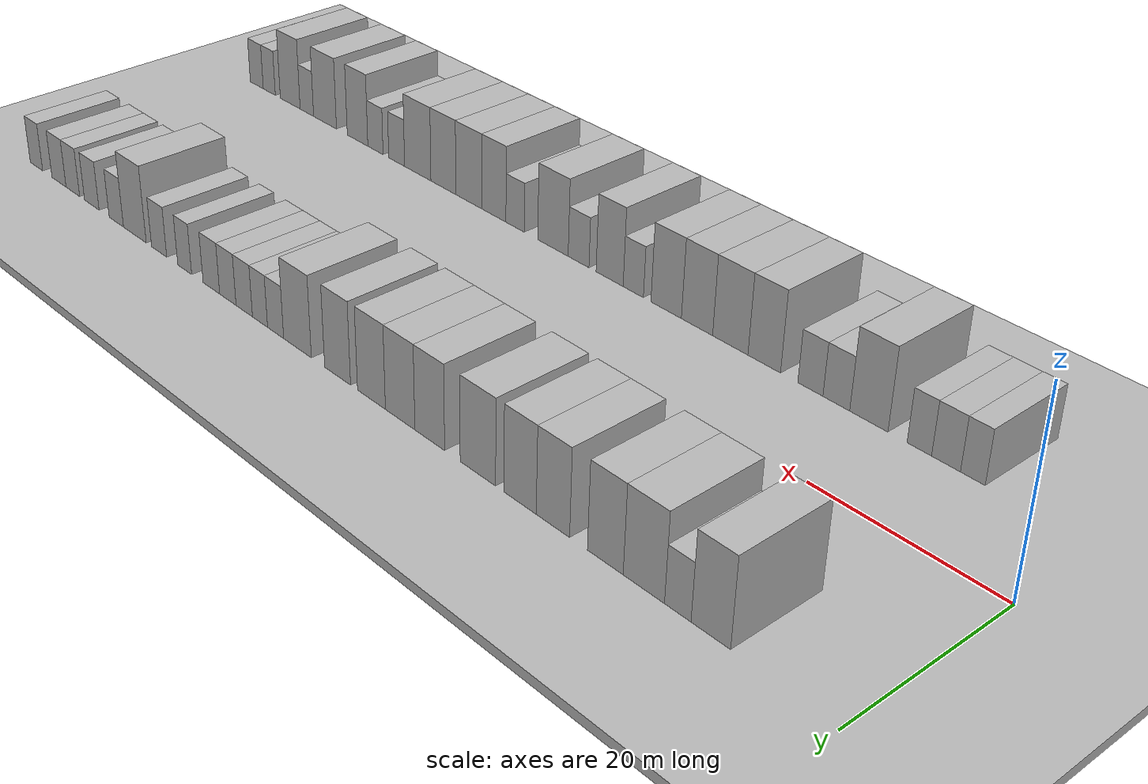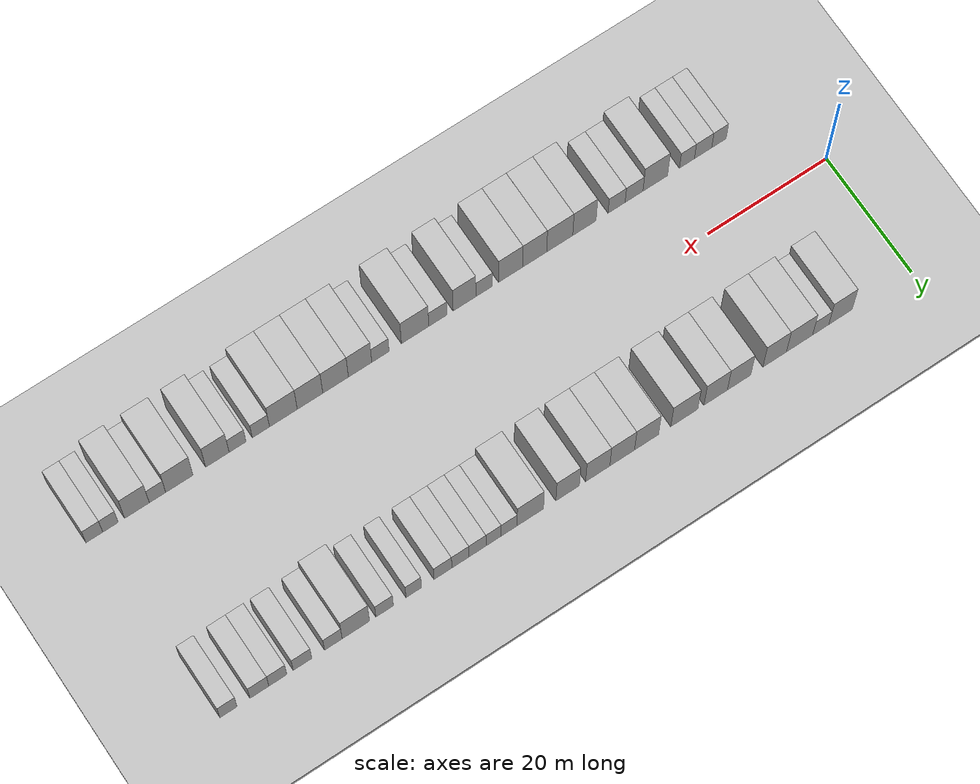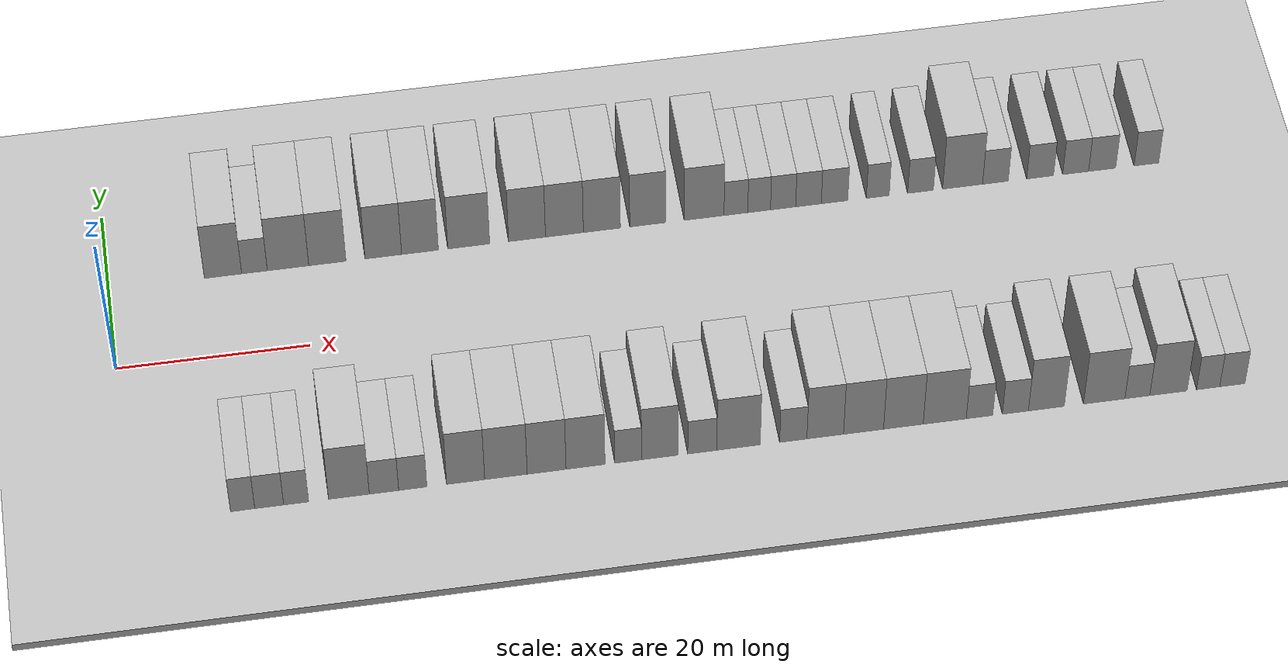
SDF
<sdf version="1.6">
 <world name="default">
  <include><name>ground_plane_1</name><uri>model://HANNAS_ground_plane</uri></include>
  <include>
   <name>ground_plane_2</name>
   <uri>model://HANNAS_ground_plane</uri>
   <pose>100 0 0  0 0 0</pose>
  </include>
  <model name="building_1">
   <static>1</static>
   <pose>11.9510 15.0000 0 0.000000 0.000000 1.570796</pose>
   <link name="link">
    <pose>0 0 4.50 0 0 0</pose>
    <collision name="collision"><geometry><box><size>10.0000 3.9020 9.0000</size></box></geometry></collision>
    <visual name="visual">
     <cast_shadows>0</cast_shadows>
     <geometry><box><size>10.0000 3.9020 9.0000</size></box></geometry>
     <material>
      <script>
       <uri>model://HANNAS_wall/materials/scripts</uri>
       <uri>model://HANNAS_wall/materials/textures</uri>
       <name>vrc/HANNAS_wall</name>
      </script>
     </material>
    </visual>
   </link>
  </model>
  <model name="building_2">
   <static>1</static>
   <pose>15.2485 15.0000 0 0.000000 0.000000 1.570796</pose>
   <link name="link">
    <pose>0 0 3.00 0 0 0</pose>
    <collision name="collision"><geometry><box><size>10.0000 2.6931 6.0000</size></box></geometry></collision>
    <visual name="visual">
     <cast_shadows>0</cast_shadows>
     <geometry><box><size>10.0000 2.6931 6.0000</size></box></geometry>
     <material>
      <script>
       <uri>model://HANNAS_wall/materials/scripts</uri>
       <uri>model://HANNAS_wall/materials/textures</uri>
       <name>vrc/HANNAS_wall</name>
      </script>
     </material>
    </visual>
   </link>
  </model>
  <model name="building_3">
   <static>1</static>
   <pose>18.7668 15.0000 0 0.000000 0.000000 1.570796</pose>
   <link name="link">
    <pose>0 0 4.50 0 0 0</pose>
    <collision name="collision"><geometry><box><size>10.0000 4.3433 9.0000</size></box></geometry></collision>
    <visual name="visual">
     <cast_shadows>0</cast_shadows>
     <geometry><box><size>10.0000 4.3433 9.0000</size></box></geometry>
     <material>
      <script>
       <uri>model://HANNAS_wall/materials/scripts</uri>
       <uri>model://HANNAS_wall/materials/textures</uri>
       <name>vrc/HANNAS_wall</name>
      </script>
     </material>
    </visual>
   </link>
  </model>
  <model name="building_4">
   <static>1</static>
   <pose>22.8934 15.0000 0 0.000000 0.000000 1.570796</pose>
   <link name="link">
    <pose>0 0 4.50 0 0 0</pose>
    <collision name="collision"><geometry><box><size>10.0000 3.9101 9.0000</size></box></geometry></collision>
    <visual name="visual">
     <cast_shadows>0</cast_shadows>
     <geometry><box><size>10.0000 3.9101 9.0000</size></box></geometry>
     <material>
      <script>
       <uri>model://HANNAS_wall/materials/scripts</uri>
       <uri>model://HANNAS_wall/materials/textures</uri>
       <name>vrc/HANNAS_wall</name>
      </script>
     </material>
    </visual>
   </link>
  </model>
  <model name="building_5">
   <static>1</static>
   <pose>28.7797 15.0000 0 0.000000 0.000000 1.570796</pose>
   <link name="link">
    <pose>0 0 4.50 0 0 0</pose>
    <collision name="collision"><geometry><box><size>10.0000 3.8624 9.0000</size></box></geometry></collision>
    <visual name="visual">
     <cast_shadows>0</cast_shadows>
     <geometry><box><size>10.0000 3.8624 9.0000</size></box></geometry>
     <material>
      <script>
       <uri>model://HANNAS_wall/materials/scripts</uri>
       <uri>model://HANNAS_wall/materials/textures</uri>
       <name>vrc/HANNAS_wall</name>
      </script>
     </material>
    </visual>
   </link>
  </model>
  <model name="building_6">
   <static>1</static>
   <pose>32.6472 15.0000 0 0.000000 0.000000 1.570796</pose>
   <link name="link">
    <pose>0 0 4.50 0 0 0</pose>
    <collision name="collision"><geometry><box><size>10.0000 3.8726 9.0000</size></box></geometry></collision>
    <visual name="visual">
     <cast_shadows>0</cast_shadows>
     <geometry><box><size>10.0000 3.8726 9.0000</size></box></geometry>
     <material>
      <script>
       <uri>model://HANNAS_wall/materials/scripts</uri>
       <uri>model://HANNAS_wall/materials/textures</uri>
       <name>vrc/HANNAS_wall</name>
      </script>
     </material>
    </visual>
   </link>
  </model>
  <model name="building_7">
   <static>1</static>
   <pose>37.7968 15.0000 0 0.000000 0.000000 1.570796</pose>
   <link name="link">
    <pose>0 0 4.50 0 0 0</pose>
    <collision name="collision"><geometry><box><size>10.0000 4.4267 9.0000</size></box></geometry></collision>
    <visual name="visual">
     <cast_shadows>0</cast_shadows>
     <geometry><box><size>10.0000 4.4267 9.0000</size></box></geometry>
     <material>
      <script>
       <uri>model://HANNAS_wall/materials/scripts</uri>
       <uri>model://HANNAS_wall/materials/textures</uri>
       <name>vrc/HANNAS_wall</name>
      </script>
     </material>
    </visual>
   </link>
  </model>
  <model name="building_8">
   <static>1</static>
   <pose>43.9708 15.0000 0 0.000000 0.000000 1.570796</pose>
   <link name="link">
    <pose>0 0 4.50 0 0 0</pose>
    <collision name="collision"><geometry><box><size>10.0000 3.9212 9.0000</size></box></geometry></collision>
    <visual name="visual">
     <cast_shadows>0</cast_shadows>
     <geometry><box><size>10.0000 3.9212 9.0000</size></box></geometry>
     <material>
      <script>
       <uri>model://HANNAS_wall/materials/scripts</uri>
       <uri>model://HANNAS_wall/materials/textures</uri>
       <name>vrc/HANNAS_wall</name>
      </script>
     </material>
    </visual>
   </link>
  </model>
  <model name="building_9">
   <static>1</static>
   <pose>47.9427 15.0000 0 0.000000 0.000000 1.570796</pose>
   <link name="link">
    <pose>0 0 4.50 0 0 0</pose>
    <collision name="collision"><geometry><box><size>10.0000 4.0226 9.0000</size></box></geometry></collision>
    <visual name="visual">
     <cast_shadows>0</cast_shadows>
     <geometry><box><size>10.0000 4.0226 9.0000</size></box></geometry>
     <material>
      <script>
       <uri>model://HANNAS_wall/materials/scripts</uri>
       <uri>model://HANNAS_wall/materials/textures</uri>
       <name>vrc/HANNAS_wall</name>
      </script>
     </material>
    </visual>
   </link>
  </model>
  <model name="building_10">
   <static>1</static>
   <pose>51.9227 15.0000 0 0.000000 0.000000 1.570796</pose>
   <link name="link">
    <pose>0 0 4.50 0 0 0</pose>
    <collision name="collision"><geometry><box><size>10.0000 3.9374 9.0000</size></box></geometry></collision>
    <visual name="visual">
     <cast_shadows>0</cast_shadows>
     <geometry><box><size>10.0000 3.9374 9.0000</size></box></geometry>
     <material>
      <script>
       <uri>model://HANNAS_wall/materials/scripts</uri>
       <uri>model://HANNAS_wall/materials/textures</uri>
       <name>vrc/HANNAS_wall</name>
      </script>
     </material>
    </visual>
   </link>
  </model>
  <model name="building_11">
   <static>1</static>
   <pose>56.7916 15.0000 0 0.000000 0.000000 1.570796</pose>
   <link name="link">
    <pose>0 0 4.50 0 0 0</pose>
    <collision name="collision"><geometry><box><size>10.0000 3.8004 9.0000</size></box></geometry></collision>
    <visual name="visual">
     <cast_shadows>0</cast_shadows>
     <geometry><box><size>10.0000 3.8004 9.0000</size></box></geometry>
     <material>
      <script>
       <uri>model://HANNAS_wall/materials/scripts</uri>
       <uri>model://HANNAS_wall/materials/textures</uri>
       <name>vrc/HANNAS_wall</name>
      </script>
     </material>
    </visual>
   </link>
  </model>
  <model name="building_12">
   <static>1</static>
   <pose>62.8235 15.0000 0 0.000000 0.000000 1.570796</pose>
   <link name="link">
    <pose>0 0 4.50 0 0 0</pose>
    <collision name="collision"><geometry><box><size>10.0000 4.2633 9.0000</size></box></geometry></collision>
    <visual name="visual">
     <cast_shadows>0</cast_shadows>
     <geometry><box><size>10.0000 4.2633 9.0000</size></box></geometry>
     <material>
      <script>
       <uri>model://HANNAS_wall/materials/scripts</uri>
       <uri>model://HANNAS_wall/materials/textures</uri>
       <name>vrc/HANNAS_wall</name>
      </script>
     </material>
    </visual>
   </link>
  </model>
  <model name="building_13">
   <static>1</static>
   <pose>66.2284 15.0000 0 0.000000 0.000000 1.570796</pose>
   <link name="link">
    <pose>0 0 3.00 0 0 0</pose>
    <collision name="collision"><geometry><box><size>10.0000 2.5465 6.0000</size></box></geometry></collision>
    <visual name="visual">
     <cast_shadows>0</cast_shadows>
     <geometry><box><size>10.0000 2.5465 6.0000</size></box></geometry>
     <material>
      <script>
       <uri>model://HANNAS_wall/materials/scripts</uri>
       <uri>model://HANNAS_wall/materials/textures</uri>
       <name>vrc/HANNAS_wall</name>
      </script>
     </material>
    </visual>
   </link>
  </model>
  <model name="building_14">
   <static>1</static>
   <pose>68.7185 15.0000 0 0.000000 0.000000 1.570796</pose>
   <link name="link">
    <pose>0 0 3.00 0 0 0</pose>
    <collision name="collision"><geometry><box><size>10.0000 2.4337 6.0000</size></box></geometry></collision>
    <visual name="visual">
     <cast_shadows>0</cast_shadows>
     <geometry><box><size>10.0000 2.4337 6.0000</size></box></geometry>
     <material>
      <script>
       <uri>model://HANNAS_wall/materials/scripts</uri>
       <uri>model://HANNAS_wall/materials/textures</uri>
       <name>vrc/HANNAS_wall</name>
      </script>
     </material>
    </visual>
   </link>
  </model>
  <model name="building_15">
   <static>1</static>
   <pose>71.2841 15.0000 0 0.000000 0.000000 1.570796</pose>
   <link name="link">
    <pose>0 0 3.00 0 0 0</pose>
    <collision name="collision"><geometry><box><size>10.0000 2.6976 6.0000</size></box></geometry></collision>
    <visual name="visual">
     <cast_shadows>0</cast_shadows>
     <geometry><box><size>10.0000 2.6976 6.0000</size></box></geometry>
     <material>
      <script>
       <uri>model://HANNAS_wall/materials/scripts</uri>
       <uri>model://HANNAS_wall/materials/textures</uri>
       <name>vrc/HANNAS_wall</name>
      </script>
     </material>
    </visual>
   </link>
  </model>
  <model name="building_16">
   <static>1</static>
   <pose>74.0103 15.0000 0 0.000000 0.000000 1.570796</pose>
   <link name="link">
    <pose>0 0 3.00 0 0 0</pose>
    <collision name="collision"><geometry><box><size>10.0000 2.7549 6.0000</size></box></geometry></collision>
    <visual name="visual">
     <cast_shadows>0</cast_shadows>
     <geometry><box><size>10.0000 2.7549 6.0000</size></box></geometry>
     <material>
      <script>
       <uri>model://HANNAS_wall/materials/scripts</uri>
       <uri>model://HANNAS_wall/materials/textures</uri>
       <name>vrc/HANNAS_wall</name>
      </script>
     </material>
    </visual>
   </link>
  </model>
  <model name="building_17">
   <static>1</static>
   <pose>76.8111 15.0000 0 0.000000 0.000000 1.570796</pose>
   <link name="link">
    <pose>0 0 3.00 0 0 0</pose>
    <collision name="collision"><geometry><box><size>10.0000 2.8467 6.0000</size></box></geometry></collision>
    <visual name="visual">
     <cast_shadows>0</cast_shadows>
     <geometry><box><size>10.0000 2.8467 6.0000</size></box></geometry>
     <material>
      <script>
       <uri>model://HANNAS_wall/materials/scripts</uri>
       <uri>model://HANNAS_wall/materials/textures</uri>
       <name>vrc/HANNAS_wall</name>
      </script>
     </material>
    </visual>
   </link>
  </model>
  <model name="building_18">
   <static>1</static>
   <pose>81.4646 15.0000 0 0.000000 0.000000 1.570796</pose>
   <link name="link">
    <pose>0 0 3.00 0 0 0</pose>
    <collision name="collision"><geometry><box><size>10.0000 2.4603 6.0000</size></box></geometry></collision>
    <visual name="visual">
     <cast_shadows>0</cast_shadows>
     <geometry><box><size>10.0000 2.4603 6.0000</size></box></geometry>
     <material>
      <script>
       <uri>model://HANNAS_wall/materials/scripts</uri>
       <uri>model://HANNAS_wall/materials/textures</uri>
       <name>vrc/HANNAS_wall</name>
      </script>
     </material>
    </visual>
   </link>
  </model>
  <model name="building_19">
   <static>1</static>
   <pose>86.0817 15.0000 0 0.000000 0.000000 1.570796</pose>
   <link name="link">
    <pose>0 0 3.00 0 0 0</pose>
    <collision name="collision"><geometry><box><size>10.0000 2.7739 6.0000</size></box></geometry></collision>
    <visual name="visual">
     <cast_shadows>0</cast_shadows>
     <geometry><box><size>10.0000 2.7739 6.0000</size></box></geometry>
     <material>
      <script>
       <uri>model://HANNAS_wall/materials/scripts</uri>
       <uri>model://HANNAS_wall/materials/textures</uri>
       <name>vrc/HANNAS_wall</name>
      </script>
     </material>
    </visual>
   </link>
  </model>
  <model name="building_20">
   <static>1</static>
   <pose>90.6306 15.0000 0 0.000000 0.000000 1.570796</pose>
   <link name="link">
    <pose>0 0 4.50 0 0 0</pose>
    <collision name="collision"><geometry><box><size>10.0000 4.3240 9.0000</size></box></geometry></collision>
    <visual name="visual">
     <cast_shadows>0</cast_shadows>
     <geometry><box><size>10.0000 4.3240 9.0000</size></box></geometry>
     <material>
      <script>
       <uri>model://HANNAS_wall/materials/scripts</uri>
       <uri>model://HANNAS_wall/materials/textures</uri>
       <name>vrc/HANNAS_wall</name>
      </script>
     </material>
    </visual>
   </link>
  </model>
  <model name="building_21">
   <static>1</static>
   <pose>94.1818 15.0000 0 0.000000 0.000000 1.570796</pose>
   <link name="link">
    <pose>0 0 3.00 0 0 0</pose>
    <collision name="collision"><geometry><box><size>10.0000 2.7784 6.0000</size></box></geometry></collision>
    <visual name="visual">
     <cast_shadows>0</cast_shadows>
     <geometry><box><size>10.0000 2.7784 6.0000</size></box></geometry>
     <material>
      <script>
       <uri>model://HANNAS_wall/materials/scripts</uri>
       <uri>model://HANNAS_wall/materials/textures</uri>
       <name>vrc/HANNAS_wall</name>
      </script>
     </material>
    </visual>
   </link>
  </model>
  <model name="building_22">
   <static>1</static>
   <pose>99.0298 15.0000 0 0.000000 0.000000 1.570796</pose>
   <link name="link">
    <pose>0 0 3.00 0 0 0</pose>
    <collision name="collision"><geometry><box><size>10.0000 2.9176 6.0000</size></box></geometry></collision>
    <visual name="visual">
     <cast_shadows>0</cast_shadows>
     <geometry><box><size>10.0000 2.9176 6.0000</size></box></geometry>
     <material>
      <script>
       <uri>model://HANNAS_wall/materials/scripts</uri>
       <uri>model://HANNAS_wall/materials/textures</uri>
       <name>vrc/HANNAS_wall</name>
      </script>
     </material>
    </visual>
   </link>
  </model>
  <model name="building_23">
   <static>1</static>
   <pose>102.8933 15.0000 0 0.000000 0.000000 1.570796</pose>
   <link name="link">
    <pose>0 0 3.00 0 0 0</pose>
    <collision name="collision"><geometry><box><size>10.0000 2.8093 6.0000</size></box></geometry></collision>
    <visual name="visual">
     <cast_shadows>0</cast_shadows>
     <geometry><box><size>10.0000 2.8093 6.0000</size></box></geometry>
     <material>
      <script>
       <uri>model://HANNAS_wall/materials/scripts</uri>
       <uri>model://HANNAS_wall/materials/textures</uri>
       <name>vrc/HANNAS_wall</name>
      </script>
     </material>
    </visual>
   </link>
  </model>
  <model name="building_24">
   <static>1</static>
   <pose>105.7759 15.0000 0 0.000000 0.000000 1.570796</pose>
   <link name="link">
    <pose>0 0 3.00 0 0 0</pose>
    <collision name="collision"><geometry><box><size>10.0000 2.9560 6.0000</size></box></geometry></collision>
    <visual name="visual">
     <cast_shadows>0</cast_shadows>
     <geometry><box><size>10.0000 2.9560 6.0000</size></box></geometry>
     <material>
      <script>
       <uri>model://HANNAS_wall/materials/scripts</uri>
       <uri>model://HANNAS_wall/materials/textures</uri>
       <name>vrc/HANNAS_wall</name>
      </script>
     </material>
    </visual>
   </link>
  </model>
  <model name="building_25">
   <static>1</static>
   <pose>110.5981 15.0000 0 0.000000 0.000000 1.570796</pose>
   <link name="link">
    <pose>0 0 3.00 0 0 0</pose>
    <collision name="collision"><geometry><box><size>10.0000 2.6883 6.0000</size></box></geometry></collision>
    <visual name="visual">
     <cast_shadows>0</cast_shadows>
     <geometry><box><size>10.0000 2.6883 6.0000</size></box></geometry>
     <material>
      <script>
       <uri>model://HANNAS_wall/materials/scripts</uri>
       <uri>model://HANNAS_wall/materials/textures</uri>
       <name>vrc/HANNAS_wall</name>
      </script>
     </material>
    </visual>
   </link>
  </model>
  <model name="building_54">
   <static>1</static>
   <pose>11.2171 -15.0000 0 0.000000 0.000000 1.570796</pose>
   <link name="link">
    <pose>0 0 3.00 0 0 0</pose>
    <collision name="collision"><geometry><box><size>10.0000 2.4342 6.0000</size></box></geometry></collision>
    <visual name="visual">
     <cast_shadows>0</cast_shadows>
     <geometry><box><size>10.0000 2.4342 6.0000</size></box></geometry>
     <material>
      <script>
       <uri>model://HANNAS_wall/materials/scripts</uri>
       <uri>model://HANNAS_wall/materials/textures</uri>
       <name>vrc/HANNAS_wall</name>
      </script>
     </material>
    </visual>
   </link>
  </model>
  <model name="building_55">
   <static>1</static>
   <pose>13.8826 -15.0000 0 0.000000 0.000000 1.570796</pose>
   <link name="link">
    <pose>0 0 3.00 0 0 0</pose>
    <collision name="collision"><geometry><box><size>10.0000 2.8969 6.0000</size></box></geometry></collision>
    <visual name="visual">
     <cast_shadows>0</cast_shadows>
     <geometry><box><size>10.0000 2.8969 6.0000</size></box></geometry>
     <material>
      <script>
       <uri>model://HANNAS_wall/materials/scripts</uri>
       <uri>model://HANNAS_wall/materials/textures</uri>
       <name>vrc/HANNAS_wall</name>
      </script>
     </material>
    </visual>
   </link>
  </model>
  <model name="building_56">
   <static>1</static>
   <pose>16.5893 -15.0000 0 0.000000 0.000000 1.570796</pose>
   <link name="link">
    <pose>0 0 3.00 0 0 0</pose>
    <collision name="collision"><geometry><box><size>10.0000 2.5164 6.0000</size></box></geometry></collision>
    <visual name="visual">
     <cast_shadows>0</cast_shadows>
     <geometry><box><size>10.0000 2.5164 6.0000</size></box></geometry>
     <material>
      <script>
       <uri>model://HANNAS_wall/materials/scripts</uri>
       <uri>model://HANNAS_wall/materials/textures</uri>
       <name>vrc/HANNAS_wall</name>
      </script>
     </material>
    </visual>
   </link>
  </model>
  <model name="building_57">
   <static>1</static>
   <pose>21.9039 -15.0000 0 0.000000 0.000000 1.570796</pose>
   <link name="link">
    <pose>0 0 4.50 0 0 0</pose>
    <collision name="collision"><geometry><box><size>10.0000 4.1128 9.0000</size></box></geometry></collision>
    <visual name="visual">
     <cast_shadows>0</cast_shadows>
     <geometry><box><size>10.0000 4.1128 9.0000</size></box></geometry>
     <material>
      <script>
       <uri>model://HANNAS_wall/materials/scripts</uri>
       <uri>model://HANNAS_wall/materials/textures</uri>
       <name>vrc/HANNAS_wall</name>
      </script>
     </material>
    </visual>
   </link>
  </model>
  <model name="building_58">
   <static>1</static>
   <pose>25.4424 -15.0000 0 0.000000 0.000000 1.570796</pose>
   <link name="link">
    <pose>0 0 3.00 0 0 0</pose>
    <collision name="collision"><geometry><box><size>10.0000 2.9643 6.0000</size></box></geometry></collision>
    <visual name="visual">
     <cast_shadows>0</cast_shadows>
     <geometry><box><size>10.0000 2.9643 6.0000</size></box></geometry>
     <material>
      <script>
       <uri>model://HANNAS_wall/materials/scripts</uri>
       <uri>model://HANNAS_wall/materials/textures</uri>
       <name>vrc/HANNAS_wall</name>
      </script>
     </material>
    </visual>
   </link>
  </model>
  <model name="building_59">
   <static>1</static>
   <pose>28.3462 -15.0000 0 0.000000 0.000000 1.570796</pose>
   <link name="link">
    <pose>0 0 3.00 0 0 0</pose>
    <collision name="collision"><geometry><box><size>10.0000 2.8432 6.0000</size></box></geometry></collision>
    <visual name="visual">
     <cast_shadows>0</cast_shadows>
     <geometry><box><size>10.0000 2.8432 6.0000</size></box></geometry>
     <material>
      <script>
       <uri>model://HANNAS_wall/materials/scripts</uri>
       <uri>model://HANNAS_wall/materials/textures</uri>
       <name>vrc/HANNAS_wall</name>
      </script>
     </material>
    </visual>
   </link>
  </model>
  <model name="building_60">
   <static>1</static>
   <pose>33.6958 -15.0000 0 0.000000 0.000000 1.570796</pose>
   <link name="link">
    <pose>0 0 4.50 0 0 0</pose>
    <collision name="collision"><geometry><box><size>10.0000 3.8559 9.0000</size></box></geometry></collision>
    <visual name="visual">
     <cast_shadows>0</cast_shadows>
     <geometry><box><size>10.0000 3.8559 9.0000</size></box></geometry>
     <material>
      <script>
       <uri>model://HANNAS_wall/materials/scripts</uri>
       <uri>model://HANNAS_wall/materials/textures</uri>
       <name>vrc/HANNAS_wall</name>
      </script>
     </material>
    </visual>
   </link>
  </model>
  <model name="building_61">
   <static>1</static>
   <pose>37.7832 -15.0000 0 0.000000 0.000000 1.570796</pose>
   <link name="link">
    <pose>0 0 4.50 0 0 0</pose>
    <collision name="collision"><geometry><box><size>10.0000 4.3190 9.0000</size></box></geometry></collision>
    <visual name="visual">
     <cast_shadows>0</cast_shadows>
     <geometry><box><size>10.0000 4.3190 9.0000</size></box></geometry>
     <material>
      <script>
       <uri>model://HANNAS_wall/materials/scripts</uri>
       <uri>model://HANNAS_wall/materials/textures</uri>
       <name>vrc/HANNAS_wall</name>
      </script>
     </material>
    </visual>
   </link>
  </model>
  <model name="building_62">
   <static>1</static>
   <pose>41.9156 -15.0000 0 0.000000 0.000000 1.570796</pose>
   <link name="link">
    <pose>0 0 4.50 0 0 0</pose>
    <collision name="collision"><geometry><box><size>10.0000 3.9457 9.0000</size></box></geometry></collision>
    <visual name="visual">
     <cast_shadows>0</cast_shadows>
     <geometry><box><size>10.0000 3.9457 9.0000</size></box></geometry>
     <material>
      <script>
       <uri>model://HANNAS_wall/materials/scripts</uri>
       <uri>model://HANNAS_wall/materials/textures</uri>
       <name>vrc/HANNAS_wall</name>
      </script>
     </material>
    </visual>
   </link>
  </model>
  <model name="building_63">
   <static>1</static>
   <pose>45.8698 -15.0000 0 0.000000 0.000000 1.570796</pose>
   <link name="link">
    <pose>0 0 4.50 0 0 0</pose>
    <collision name="collision"><geometry><box><size>10.0000 3.9627 9.0000</size></box></geometry></collision>
    <visual name="visual">
     <cast_shadows>0</cast_shadows>
     <geometry><box><size>10.0000 3.9627 9.0000</size></box></geometry>
     <material>
      <script>
       <uri>model://HANNAS_wall/materials/scripts</uri>
       <uri>model://HANNAS_wall/materials/textures</uri>
       <name>vrc/HANNAS_wall</name>
      </script>
     </material>
    </visual>
   </link>
  </model>
  <model name="building_64">
   <static>1</static>
   <pose>50.2139 -15.0000 0 0.000000 0.000000 1.570796</pose>
   <link name="link">
    <pose>0 0 3.00 0 0 0</pose>
    <collision name="collision"><geometry><box><size>10.0000 2.7255 6.0000</size></box></geometry></collision>
    <visual name="visual">
     <cast_shadows>0</cast_shadows>
     <geometry><box><size>10.0000 2.7255 6.0000</size></box></geometry>
     <material>
      <script>
       <uri>model://HANNAS_wall/materials/scripts</uri>
       <uri>model://HANNAS_wall/materials/textures</uri>
       <name>vrc/HANNAS_wall</name>
      </script>
     </material>
    </visual>
   </link>
  </model>
  <model name="building_65">
   <static>1</static>
   <pose>53.4395 -15.0000 0 0.000000 0.000000 1.570796</pose>
   <link name="link">
    <pose>0 0 4.50 0 0 0</pose>
    <collision name="collision"><geometry><box><size>10.0000 3.7256 9.0000</size></box></geometry></collision>
    <visual name="visual">
     <cast_shadows>0</cast_shadows>
     <geometry><box><size>10.0000 3.7256 9.0000</size></box></geometry>
     <material>
      <script>
       <uri>model://HANNAS_wall/materials/scripts</uri>
       <uri>model://HANNAS_wall/materials/textures</uri>
       <name>vrc/HANNAS_wall</name>
      </script>
     </material>
    </visual>
   </link>
  </model>
  <model name="building_66">
   <static>1</static>
   <pose>57.7850 -15.0000 0 0.000000 0.000000 1.570796</pose>
   <link name="link">
    <pose>0 0 3.00 0 0 0</pose>
    <collision name="collision"><geometry><box><size>10.0000 2.9654 6.0000</size></box></geometry></collision>
    <visual name="visual">
     <cast_shadows>0</cast_shadows>
     <geometry><box><size>10.0000 2.9654 6.0000</size></box></geometry>
     <material>
      <script>
       <uri>model://HANNAS_wall/materials/scripts</uri>
       <uri>model://HANNAS_wall/materials/textures</uri>
       <name>vrc/HANNAS_wall</name>
      </script>
     </material>
    </visual>
   </link>
  </model>
  <model name="building_67">
   <static>1</static>
   <pose>61.4964 -15.0000 0 0.000000 0.000000 1.570796</pose>
   <link name="link">
    <pose>0 0 4.50 0 0 0</pose>
    <collision name="collision"><geometry><box><size>10.0000 4.4574 9.0000</size></box></geometry></collision>
    <visual name="visual">
     <cast_shadows>0</cast_shadows>
     <geometry><box><size>10.0000 4.4574 9.0000</size></box></geometry>
     <material>
      <script>
       <uri>model://HANNAS_wall/materials/scripts</uri>
       <uri>model://HANNAS_wall/materials/textures</uri>
       <name>vrc/HANNAS_wall</name>
      </script>
     </material>
    </visual>
   </link>
  </model>
  <model name="building_68">
   <static>1</static>
   <pose>67.1237 -15.0000 0 0.000000 0.000000 1.570796</pose>
   <link name="link">
    <pose>0 0 3.00 0 0 0</pose>
    <collision name="collision"><geometry><box><size>10.0000 2.7972 6.0000</size></box></geometry></collision>
    <visual name="visual">
     <cast_shadows>0</cast_shadows>
     <geometry><box><size>10.0000 2.7972 6.0000</size></box></geometry>
     <material>
      <script>
       <uri>model://HANNAS_wall/materials/scripts</uri>
       <uri>model://HANNAS_wall/materials/textures</uri>
       <name>vrc/HANNAS_wall</name>
      </script>
     </material>
    </visual>
   </link>
  </model>
  <model name="building_69">
   <static>1</static>
   <pose>70.4109 -15.0000 0 0.000000 0.000000 1.570796</pose>
   <link name="link">
    <pose>0 0 4.50 0 0 0</pose>
    <collision name="collision"><geometry><box><size>10.0000 3.7771 9.0000</size></box></geometry></collision>
    <visual name="visual">
     <cast_shadows>0</cast_shadows>
     <geometry><box><size>10.0000 3.7771 9.0000</size></box></geometry>
     <material>
      <script>
       <uri>model://HANNAS_wall/materials/scripts</uri>
       <uri>model://HANNAS_wall/materials/textures</uri>
       <name>vrc/HANNAS_wall</name>
      </script>
     </material>
    </visual>
   </link>
  </model>
  <model name="building_70">
   <static>1</static>
   <pose>74.3618 -15.0000 0 0.000000 0.000000 1.570796</pose>
   <link name="link">
    <pose>0 0 4.50 0 0 0</pose>
    <collision name="collision"><geometry><box><size>10.0000 4.1248 9.0000</size></box></geometry></collision>
    <visual name="visual">
     <cast_shadows>0</cast_shadows>
     <geometry><box><size>10.0000 4.1248 9.0000</size></box></geometry>
     <material>
      <script>
       <uri>model://HANNAS_wall/materials/scripts</uri>
       <uri>model://HANNAS_wall/materials/textures</uri>
       <name>vrc/HANNAS_wall</name>
      </script>
     </material>
    </visual>
   </link>
  </model>
  <model name="building_71">
   <static>1</static>
   <pose>78.4745 -15.0000 0 0.000000 0.000000 1.570796</pose>
   <link name="link">
    <pose>0 0 4.50 0 0 0</pose>
    <collision name="collision"><geometry><box><size>10.0000 4.1004 9.0000</size></box></geometry></collision>
    <visual name="visual">
     <cast_shadows>0</cast_shadows>
     <geometry><box><size>10.0000 4.1004 9.0000</size></box></geometry>
     <material>
      <script>
       <uri>model://HANNAS_wall/materials/scripts</uri>
       <uri>model://HANNAS_wall/materials/textures</uri>
       <name>vrc/HANNAS_wall</name>
      </script>
     </material>
    </visual>
   </link>
  </model>
  <model name="building_72">
   <static>1</static>
   <pose>82.7525 -15.0000 0 0.000000 0.000000 1.570796</pose>
   <link name="link">
    <pose>0 0 4.50 0 0 0</pose>
    <collision name="collision"><geometry><box><size>10.0000 4.4556 9.0000</size></box></geometry></collision>
    <visual name="visual">
     <cast_shadows>0</cast_shadows>
     <geometry><box><size>10.0000 4.4556 9.0000</size></box></geometry>
     <material>
      <script>
       <uri>model://HANNAS_wall/materials/scripts</uri>
       <uri>model://HANNAS_wall/materials/textures</uri>
       <name>vrc/HANNAS_wall</name>
      </script>
     </material>
    </visual>
   </link>
  </model>
  <model name="building_73">
   <static>1</static>
   <pose>86.3545 -15.0000 0 0.000000 0.000000 1.570796</pose>
   <link name="link">
    <pose>0 0 3.00 0 0 0</pose>
    <collision name="collision"><geometry><box><size>10.0000 2.7485 6.0000</size></box></geometry></collision>
    <visual name="visual">
     <cast_shadows>0</cast_shadows>
     <geometry><box><size>10.0000 2.7485 6.0000</size></box></geometry>
     <material>
      <script>
       <uri>model://HANNAS_wall/materials/scripts</uri>
       <uri>model://HANNAS_wall/materials/textures</uri>
       <name>vrc/HANNAS_wall</name>
      </script>
     </material>
    </visual>
   </link>
  </model>
  <model name="building_74">
   <static>1</static>
   <pose>90.0816 -15.0000 0 0.000000 0.000000 1.570796</pose>
   <link name="link">
    <pose>0 0 3.00 0 0 0</pose>
    <collision name="collision"><geometry><box><size>10.0000 2.7057 6.0000</size></box></geometry></collision>
    <visual name="visual">
     <cast_shadows>0</cast_shadows>
     <geometry><box><size>10.0000 2.7057 6.0000</size></box></geometry>
     <material>
      <script>
       <uri>model://HANNAS_wall/materials/scripts</uri>
       <uri>model://HANNAS_wall/materials/textures</uri>
       <name>vrc/HANNAS_wall</name>
      </script>
     </material>
    </visual>
   </link>
  </model>
  <model name="building_75">
   <static>1</static>
   <pose>93.2988 -15.0000 0 0.000000 0.000000 1.570796</pose>
   <link name="link">
    <pose>0 0 4.50 0 0 0</pose>
    <collision name="collision"><geometry><box><size>10.0000 3.7288 9.0000</size></box></geometry></collision>
    <visual name="visual">
     <cast_shadows>0</cast_shadows>
     <geometry><box><size>10.0000 3.7288 9.0000</size></box></geometry>
     <material>
      <script>
       <uri>model://HANNAS_wall/materials/scripts</uri>
       <uri>model://HANNAS_wall/materials/textures</uri>
       <name>vrc/HANNAS_wall</name>
      </script>
     </material>
    </visual>
   </link>
  </model>
  <model name="building_76">
   <static>1</static>
   <pose>99.3253 -15.0000 0 0.000000 0.000000 1.570796</pose>
   <link name="link">
    <pose>0 0 4.50 0 0 0</pose>
    <collision name="collision"><geometry><box><size>10.0000 4.3243 9.0000</size></box></geometry></collision>
    <visual name="visual">
     <cast_shadows>0</cast_shadows>
     <geometry><box><size>10.0000 4.3243 9.0000</size></box></geometry>
     <material>
      <script>
       <uri>model://HANNAS_wall/materials/scripts</uri>
       <uri>model://HANNAS_wall/materials/textures</uri>
       <name>vrc/HANNAS_wall</name>
      </script>
     </material>
    </visual>
   </link>
  </model>
  <model name="building_77">
   <static>1</static>
   <pose>102.7853 -15.0000 0 0.000000 0.000000 1.570796</pose>
   <link name="link">
    <pose>0 0 3.00 0 0 0</pose>
    <collision name="collision"><geometry><box><size>10.0000 2.5957 6.0000</size></box></geometry></collision>
    <visual name="visual">
     <cast_shadows>0</cast_shadows>
     <geometry><box><size>10.0000 2.5957 6.0000</size></box></geometry>
     <material>
      <script>
       <uri>model://HANNAS_wall/materials/scripts</uri>
       <uri>model://HANNAS_wall/materials/textures</uri>
       <name>vrc/HANNAS_wall</name>
      </script>
     </material>
    </visual>
   </link>
  </model>
  <model name="building_78">
   <static>1</static>
   <pose>106.0315 -15.0000 0 0.000000 0.000000 1.570796</pose>
   <link name="link">
    <pose>0 0 4.50 0 0 0</pose>
    <collision name="collision"><geometry><box><size>10.0000 3.8966 9.0000</size></box></geometry></collision>
    <visual name="visual">
     <cast_shadows>0</cast_shadows>
     <geometry><box><size>10.0000 3.8966 9.0000</size></box></geometry>
     <material>
      <script>
       <uri>model://HANNAS_wall/materials/scripts</uri>
       <uri>model://HANNAS_wall/materials/textures</uri>
       <name>vrc/HANNAS_wall</name>
      </script>
     </material>
    </visual>
   </link>
  </model>
  <model name="building_79">
   <static>1</static>
   <pose>110.1955 -15.0000 0 0.000000 0.000000 1.570796</pose>
   <link name="link">
    <pose>0 0 3.00 0 0 0</pose>
    <collision name="collision"><geometry><box><size>10.0000 2.4315 6.0000</size></box></geometry></collision>
    <visual name="visual">
     <cast_shadows>0</cast_shadows>
     <geometry><box><size>10.0000 2.4315 6.0000</size></box></geometry>
     <material>
      <script>
       <uri>model://HANNAS_wall/materials/scripts</uri>
       <uri>model://HANNAS_wall/materials/textures</uri>
       <name>vrc/HANNAS_wall</name>
      </script>
     </material>
    </visual>
   </link>
  </model>
  <model name="building_80">
   <static>1</static>
   <pose>112.7317 -15.0000 0 0.000000 0.000000 1.570796</pose>
   <link name="link">
    <pose>0 0 3.00 0 0 0</pose>
    <collision name="collision"><geometry><box><size>10.0000 2.6409 6.0000</size></box></geometry></collision>
    <visual name="visual">
     <cast_shadows>0</cast_shadows>
     <geometry><box><size>10.0000 2.6409 6.0000</size></box></geometry>
     <material>
      <script>
       <uri>model://HANNAS_wall/materials/scripts</uri>
       <uri>model://HANNAS_wall/materials/textures</uri>
       <name>vrc/HANNAS_wall</name>
      </script>
     </material>
    </visual>
   </link>
  </model>
 </world>
</sdf>
